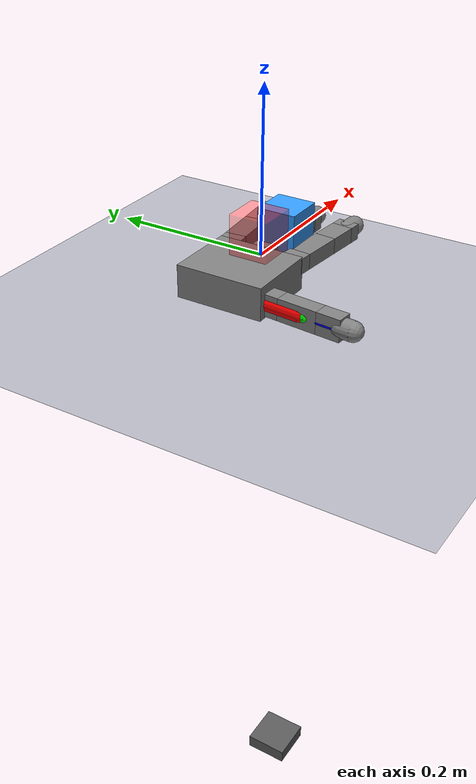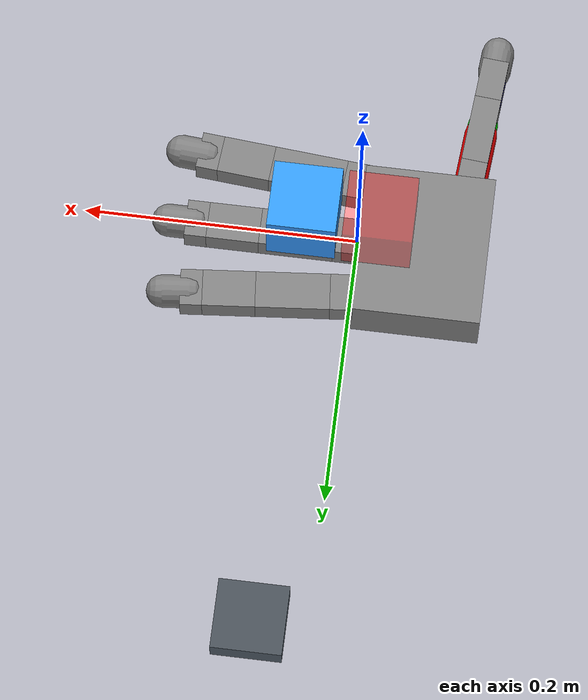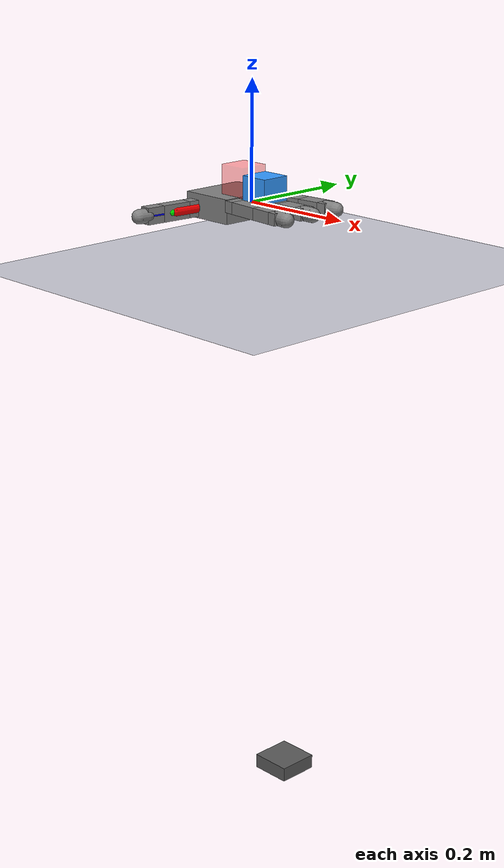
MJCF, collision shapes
<mujoco model="right_allegro_hand scene">

<option gravity="0 0 -9.81"
        timestep="0.002"
        iterations="100"
        ls_iterations="50"
        integrator="implicitfast"
        cone="elliptic"/>

  <include file="right_hand.xml"/>

  <statistic center="0 0 0" extent="0.3"/>

  <visual>
    <rgba haze="0.15 0.25 0.35 1"/>
    <quality shadowsize="8192"/>
    <global azimuth="130" elevation="-40"/>
  </visual>

  <asset>
    <texture type="skybox" builtin="gradient" rgb1="0.3 0.5 0.7" rgb2="0 0 0" width="512" height="3072"/>
    <texture type="2d" name="groundplane" builtin="checker" mark="edge" rgb1="0.2 0.3 0.4" rgb2="0.1 0.2 0.3"
      markrgb="0.8 0.8 0.8" width="300" height="300"/>
    <material name="groundplane" texture="groundplane" texuniform="true" texrepeat="5 5" reflectance="0.2"/>
  </asset>

  <worldbody>
    <light pos="0 0 1"/>
    <light pos="0.3 0 1.5" dir="0 0 -1" directional="true"/>

    <geom name="floor" pos="0 0 -0.1" size="0 0 0.05" type="plane" material="groundplane"/>

    <!-- Small cube pedestal. Narrow, so it does not collide with fingers. -->
    <geom name="support_table"
          type="box"
          pos="0.085 0 -1.0"
          size="0.035 0.035 0.0125"
          rgba="0.35 0.35 0.35 1"
          contype="1"
          conaffinity="1"
          condim="6"
          friction="1.2 0.01 0.001"
          solref="0.003 1"
          solimp="0.95 0.99 0.0005"/>

    <!-- Manipulated cube -->
    <body name="block" pos="0.04 -0.01 0.025">
      <freejoint name="block_freejoint"/>
      <geom name="block_geom" type="box" size="0.025 0.025 0.025"
            rgba="0.2 0.6 1.0 1"
            mass="0.02"
            condim="6"
            priority="1"
            friction="1.5 0.02 0.001" solref="0.005 1" solimp="0.95 0.99 0.001"/>
    </body>

    <!-- Goal marker only. No collision. -->
    <body name="goal_marker" pos="-0.015 -0.005 0.035">
      <geom name="goal_geom" type="box" size="0.025 0.025 0.025"
            rgba="1 0 0 0.35"
            contype="0"
            conaffinity="0"/>
    </body>
  </worldbody>
</mujoco>

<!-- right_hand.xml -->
<mujoco model="allegro_right">
  <compiler angle="radian" meshdir="assets" autolimits="true"/>

  <option cone="elliptic" impratio="10"/>

  <default>
    <default class="allegro_right">
      <joint axis="0 1 0" damping="1.5" armature="0.01"/>
      <position kp="15" kv="2" forcerange="-2 2"/>
      <geom density="800"/>

      <default class="visual">
        <geom type="mesh" contype="0" conaffinity="0" group="2" material="black"/>
        <default class="palm_visual">
          <geom mesh="base_link"/>
        </default>
        <default class="base_visual">
          <geom mesh="link_0.0"/>
        </default>
        <default class="proximal_visual">
          <geom mesh="link_1.0"/>
        </default>
        <default class="medial_visual">
          <geom mesh="link_2.0"/>
        </default>
        <default class="distal_visual">
          <geom mesh="link_3.0"/>
        </default>
        <default class="fingertip_visual">
          <geom pos="0 0 0.0267" material="white" mesh="link_3.0_tip"/>
        </default>
        <default class="thumbtip_visual">
          <geom pos="0 0 0.0423" material="white" mesh="link_15.0_tip"/>
        </default>
      </default>

      <default class="collision">

<geom group="3"
      type="box"
      mass="0"
      contype="1"
      conaffinity="1"
      condim="6"
      friction="1.5 0.02 0.001"
      solref="0.003 1"
      solimp="0.95 0.99 0.0005"/>

        <default class="palm_collision">
          <geom size="0.0204 0.0565 0.0475" pos="-0.0093 0 -0.0475"/>
        </default>
        <default class="base_collision">
          <geom size="0.0098 0.01375 0.0082" pos="0 0 0.0082"/>
          <default class="thumb_base_collision">
            <geom size="0.0179 0.017 0.02275" pos="-0.0179 0.009 0.0145"/>
          </default>
        </default>
        <default class="proximal_collision">
          <geom size="0.0098 0.01375 0.027" pos="0 0 0.027"/>
          <default class="thumb_proximal_collision">
            <geom size="0.0098 0.01375 0.00885" pos="0 0 0.00885"/>
          </default>
        </default>
        <default class="medial_collision">
          <geom size="0.0098 0.01375 0.0192" pos="0 0 0.0192"/>
          <default class="thumb_medial_collision">
            <geom size="0.0098 0.01375 0.0257" pos="0 0 0.0257"/>
          </default>
        </default>
        <default class="distal_collision">
          <geom size="0.0098 0.01375 0.008" pos="0 0 0.008"/>
          <default class="thumb_distal_collision">
            <geom size="0.0098 0.01375 0.0157" pos="0 0 0.0157"/>
          </default>
        </default>
        <default class="fingertip_collision">
          <geom type="capsule" size="0.012 0.01" pos="0 0 0.019"/>
          <default class="thumbtip_collision">
            <geom type="capsule" size="0.012 0.008" pos="0 0 0.035"/>
          </default>
        </default>
      </default>

      <default class="base">
        <joint axis="0 0 1" range="-0.47 0.47"/>
        <position ctrlrange="-0.47 0.47"/>
      </default>
      <default class="proximal">
        <joint range="-0.196 1.61"/>
        <position ctrlrange="-0.196 1.61"/>
      </default>
      <default class="medial">
        <joint range="-0.174 1.709"/>
        <position ctrlrange="-0.174 1.709"/>
      </default>
      <default class="distal">
        <joint range="-0.227 1.618"/>
        <position ctrlrange="-0.227 1.618"/>
      </default>
      <default class="thumb_base">
        <joint axis="-1 0 0" range="0.263 1.396"/>
        <position ctrlrange="0.263 1.396"/>
      </default>
      <default class="thumb_proximal">
        <joint axis="0 0 1" range="-0.105 1.163"/>
        <position ctrlrange="-0.105 1.163"/>
      </default>
      <default class="thumb_medial">
        <joint range="-0.189 1.644"/>
        <position ctrlrange="-0.189 1.644"/>
      </default>
      <default class="thumb_distal">
        <joint range="-0.162 1.719"/>
        <position ctrlrange="-0.162 1.719"/>
      </default>
    </default>
  </default>

  <asset>
    <material name="black" rgba="0.2 0.2 0.2 1"/>
    <material name="white" rgba="0.9 0.9 0.9 1"/>

    <mesh file="base_link.stl"/>
    <mesh file="link_0.0.stl"/>
    <mesh file="link_1.0.stl"/>
    <mesh file="link_2.0.stl"/>
    <mesh file="link_3.0.stl"/>
    <mesh file="link_3.0_tip.stl"/>
    <mesh file="link_12.0_right.stl"/>
    <mesh file="link_13.0.stl"/>
    <mesh file="link_14.0.stl"/>
    <mesh file="link_15.0.stl"/>
    <mesh file="link_15.0_tip.stl"/>
  </asset>

  <worldbody>
    <body name="palm" quat="0 1 0 1" childclass="allegro_right">
      <geom class="palm_visual" mesh="base_link"/>
      <geom class="palm_collision"/>
      <!-- First finger -->
      <body name="ff_base" pos="0 0.0435 -0.001542" quat="0.999048 -0.0436194 0 0">
        <joint name="ffj0" class="base"/>
        <geom class="base_visual"/>
        <geom class="base_collision"/>
        <body name="ff_proximal" pos="0 0 0.0164">
          <joint name="ffj1" class="proximal"/>
          <geom class="proximal_visual"/>
          <geom class="proximal_collision"/>
          <body name="ff_medial" pos="0 0 0.054">
            <joint name="ffj2" class="medial"/>
            <geom class="medial_visual"/>
            <geom class="medial_collision"/>
            <body name="ff_distal" pos="0 0 0.0384">
              <joint name="ffj3" class="distal"/>
              <geom class="distal_visual"/>
              <geom class="distal_collision"/>
              <body name="ff_tip">
                <geom class="fingertip_visual"/>
                <geom class="fingertip_collision"/>

                <site name="index_tip"
                pos="0 0 0"
                size="0.005"
                rgba="1 0 0 1"/>

              </body>
            </body>
          </body>
        </body>
      </body>
      <!-- Middle finger -->
      <body name="mf_base" pos="0 0 0.0007">
        <joint name="mfj0" class="base"/>
        <geom class="base_visual"/>
        <geom class="base_collision"/>
        <body name="mf_proximal" pos="0 0 0.0164">
          <joint name="mfj1" class="proximal"/>
          <geom class="proximal_visual"/>
          <geom class="proximal_collision"/>
          <body name="mf_medial" pos="0 0 0.054">
            <joint name="mfj2" class="medial"/>
            <geom class="medial_visual"/>
            <geom class="medial_collision"/>
            <body name="mf_distal" pos="0 0 0.0384">
              <joint name="mfj3" class="distal"/>
              <geom class="distal_visual"/>
              <geom class="distal_collision"/>
              <body name="mf_tip">
                <geom class="fingertip_visual"/>
                <geom class="fingertip_collision"/>
                <site name="middle_tip" pos="0 0 0" size="0.005" rgba="0 1 0 1"/>
              </body>
            </body>
          </body>
        </body>
      </body>
      <!-- Ring finger -->
      <body name="rf_base" pos="0 -0.0435 -0.001542" quat="0.999048 0.0436194 0 0">
        <joint name="rfj0" class="base"/>
        <geom class="base_visual"/>
        <geom class="base_collision"/>
        <body name="rf_proximal" pos="0 0 0.0164">
          <joint name="rfj1" class="proximal"/>
          <geom class="proximal_visual"/>
          <geom class="proximal_collision"/>
          <body name="rf_medial" pos="0 0 0.054">
            <joint name="rfj2" class="medial"/>
            <geom class="medial_visual"/>
            <geom class="medial_collision"/>
            <body name="rf_distal" pos="0 0 0.0384">
              <joint name="rfj3" class="distal"/>
              <geom class="distal_visual"/>
              <geom class="distal_collision"/>
              <body name="rf_tip">
                <geom class="fingertip_visual"/>
                <geom class="fingertip_collision"/>
                <site name="ring_tip" pos="0 0 0" size="0.005" rgba="0 0 1 1"/>
              </body>
            </body>
          </body>
        </body>
      </body>
      <!-- Thumb -->
      <body name="th_base" pos="-0.0182 0.019333 -0.045987" quat="0.477714 -0.521334 -0.521334 -0.477714">
        <joint name="thj0" class="thumb_base"/>
        <geom class="visual" mesh="link_12.0_right"/>
        <geom class="thumb_base_collision"/>
        <body name="th_proximal" pos="-0.027 0.005 0.0399">
          <joint name="thj1" class="thumb_proximal"/>
          <geom class="visual" mesh="link_13.0"/>
          <geom type="capsule" fromto="0 0 0 0 0 0.045"
                size="0.012"
                contype="1"
                conaffinity="1"
                condim="6"
                friction="1.5 0.02 0.001"
                solref="0.005 1"
                solimp="0.95 0.99 0.001"
                rgba="1 0 0 0.3"/>
          <geom class="thumb_proximal_collision"/>
          <body name="th_medial" pos="0 0 0.0177">
            <joint name="thj2" class="thumb_medial"/>
            <geom class="visual" mesh="link_14.0"/>
            <geom type="capsule" fromto="0 0 0 0 0 0.035"
                  size="0.011"
                  contype="1"
                  conaffinity="1"
                  condim="6"
                  friction="1.5 0.02 0.001"
                  solref="0.005 1"
                  solimp="0.95 0.99 0.001"
                  rgba="0 1 0 0.3"/>
            <geom class="thumb_medial_collision"/>
            <body name="th_distal" pos="0 0 0.0514">
              <joint name="thj3" class="thumb_distal"/>
              <geom class="visual" mesh="link_15.0"/>
              <geom type="capsule" fromto="0 0 0 0 0 0.03"
                    size="0.010"
                    contype="1"
                    conaffinity="1"
                    condim="6"
                    friction="1.5 0.02 0.001"
                    solref="0.005 1"
                    solimp="0.95 0.99 0.001"
                    rgba="0 0 1 0.3"/>
              <geom class="thumb_distal_collision"/>
              <body name="th_tip">
                <geom class="thumbtip_visual"/>
                <geom class="thumbtip_collision"/>
                <site name="thumb_tip" pos="0 0 0" size="0.005" rgba="1 1 0 1"/>
              </body>
            </body>
          </body>
        </body>
      </body>
    </body>
  </worldbody>

  <contact>
    <exclude body1="palm" body2="ff_base"/>
    <exclude body1="palm" body2="mf_base"/>
    <exclude body1="palm" body2="rf_base"/>
    <exclude body1="palm" body2="th_base"/>
    <exclude body1="palm" body2="th_proximal"/>
  </contact>

  <actuator>
    <position name="ffa0" joint="ffj0" class="base"/>
    <position name="ffa1" joint="ffj1" class="proximal"/>
    <position name="ffa2" joint="ffj2" class="medial"/>
    <position name="ffa3" joint="ffj3" class="distal"/>
    <position name="mfa0" joint="mfj0" class="base"/>
    <position name="mfa1" joint="mfj1" class="proximal"/>
    <position name="mfa2" joint="mfj2" class="medial"/>
    <position name="mfa3" joint="mfj3" class="distal"/>
    <position name="rfa0" joint="rfj0" class="base"/>
    <position name="rfa1" joint="rfj1" class="proximal"/>
    <position name="rfa2" joint="rfj2" class="medial"/>
    <position name="rfa3" joint="rfj3" class="distal"/>
    <position name="tha0" joint="thj0" class="thumb_base"/>
    <position name="tha1" joint="thj1" class="thumb_proximal"/>
    <position name="tha2" joint="thj2" class="thumb_medial"/>
    <position name="tha3" joint="thj3" class="thumb_distal"/>
  </actuator>
</mujoco>
